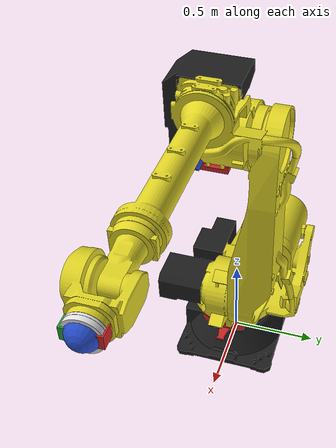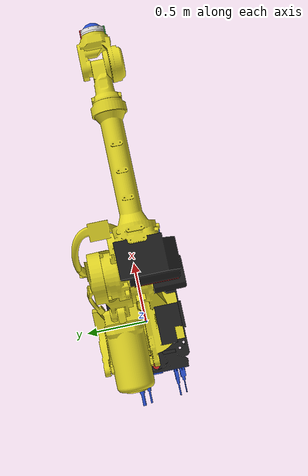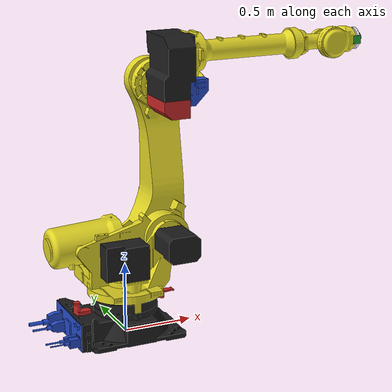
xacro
<?xml version="1.0"?>
<robot name="yefan" xmlns:xacro="http://www.ros.org/wiki/xacro">

    <xacro:include filename="$(find yefan_description)/urdf/yefan_limits.xacro"/>
    <xacro:include filename="$(find yefan_description)/urdf/torque_sensor.xacro"/>

    <yefan_macro/>
    <yefan_torque_sensors/>

    <link name="world"/>

    <joint name="grounding" type="fixed">
        <parent link="world"/>
        <child link="link1"/>
        <origin
                xyz="0 0 0"
                rpy="0 0 0"/>
    </joint>
    <gazebo>
        <plugin filename="libgazebo_ros_control.so" name="ros_control">
            <robotNamespace>/yefan</robotNamespace>
        </plugin>
        <plugin filename="libgazebo_ros_ft_sensor.so" name="ft_sensor">
            <topicName>/yefan/ft_sensor</topicName>
            <robotNamespace>/yefan</robotNamespace>
            <jointName>joint_torque_sensor</jointName>
        </plugin>
    </gazebo>
    <gazebo reference="joint_torque_sensor">
        <provideFeedback>true</provideFeedback>
    </gazebo>
</robot>

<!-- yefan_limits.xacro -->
<robot xmlns:xacro="http://www.ros.org/wiki/xacro">
    <xacro:macro name="yefan_limits_for_first_joints">
        <limit
            lower="-1000"
            upper="1000"
            effort="5000"
            velocity="1000000"/>
    </xacro:macro>

    <xacro:macro name="yefan_limits_for_last_joints">
        <limit
            lower="-1000"
            upper="1000"
            effort="500"
            velocity="1000000"/>
    </xacro:macro>

    <xacro:macro name="yefan_macro">
        <joint name="joint1" type="revolute">
            <origin xyz="0 0 0.346" rpy="0 0 0"/>
            <parent link="link1"/>
            <child link="link2"/>
            <axis xyz="0 0 1"/>
            <yefan_limits_for_first_joints/>
            <!--  bound +-185 limit effort ? and dynamics? -->
            <dynamics damping="125" friction="155"/>
        </joint>
        <joint name="joint2" type="revolute">
            <origin xyz="0.312 0 0.324" rpy="0 0 0"/>
            <parent link="link2"/>
            <child link="link3"/>
            <axis xyz="0 1 0"/>
            <yefan_limits_for_first_joints/>
            <!--  limit effort, boudns? range=136 ? ? and dynamics? -->
            <dynamics damping="72" friction="50"/>
        </joint>
        <joint name="joint3" type="revolute">
            <origin xyz="0 0 1.075" rpy="0 0 0"/>
            <parent link="link3"/>
            <child link="link4"/>
            <axis xyz="0 -1 0"/>
            <yefan_limits_for_first_joints/>
            <!--  limit effort, boudns? range=312 ? and dynamics? -->
            <dynamics damping="15" friction="48"/>
        </joint>
        <joint name="joint4" type="revolute">
            <origin xyz="0 0 0.225" rpy="0 0 0"/>
            <parent link="link4"/>
            <child link="link5"/>
            <axis xyz="-1 0 0"/>
            <yefan_limits_for_last_joints/>
            <!--  limit effort =moment ? and dynamics? -->
            <dynamics damping="1" friction="1"/>
        </joint>
        <joint name="joint5" type="revolute">
            <origin xyz="1.28 0 0" rpy="0 0 0"/>
            <parent link="link5"/>
            <child link="link6"/>
            <axis xyz="0 -1 0"/>
            <yefan_limits_for_last_joints/>
            <!--  limit, bound? range=250 effort ? and dynamics? -->
            <dynamics damping="1" friction="1"/>
        </joint>
        <joint name="joint6" type="revolute">
            <origin xyz="0.215 0 0" rpy="0 0 0"/>
            <parent link="link6"/>
            <child link="link7"/>
            <axis xyz="-1 0 0"/>
            <yefan_limits_for_last_joints/>
            <!--  limit effort ? and dynamics? -->
            <dynamics damping="1" friction="1"/>
        </joint>

        <link name="link1">
            <inertial>
                <mass value="550"/>
                <origin xyz="0 0 0"/>
                <inertia ixx="0.0" ixy="0.0" ixz="0.0"
                         iyy="0.0" iyz="0.0"
                         izz="0.0"/>
            </inertial>
            <collision>
                <origin xyz="0 0 0" rpy="0 0 0"/>
                <geometry>
                    <mesh filename="package://yefan_description/meshes/J1.STL"/>
                </geometry>
            </collision>
            <visual>
                <origin xyz="0 0 0" rpy="0 0 0"/>
                <geometry>
                    <mesh filename="package://yefan_description/meshes/J1.STL"/>
                </geometry>
            </visual>
        </link>

        <link name="link2">
            <inertial>
                <mass value="250"/>
                <origin xyz="0 0 0"/>
                <inertia ixx="0.0" ixy="0.0" ixz="0.0"
                         iyy="0.0" iyz="0.0"
                         izz="0.0"/>
            </inertial>
            <collision>
                <origin xyz="0 0 -0.346" rpy="0 0 0"/>
                <geometry>
                    <mesh filename="package://yefan_description/meshes/J2Base.STL"/>
                </geometry>
            </collision>
            <visual>
                <origin xyz="0 0 -0.346" rpy="0 0 0"/>
                <geometry>
                    <mesh filename="package://yefan_description/meshes/J2Base.STL"/>
                </geometry>
            </visual>
        </link>

        <link name="link3">
            <inertial>
                <mass value="60"/>
                <origin xyz="0 0 0"/>
                <inertia ixx="0.0" ixy="0.0" ixz="0.0"
                         iyy="0.0" iyz="0.0"
                         izz="0.0"/>
            </inertial>
            <collision>
                <origin xyz="-0.312 0 -0.67" rpy="0 0 0"/>
                <geometry>
                    <mesh filename="package://yefan_description/meshes/J2Arm.STL"/>
                </geometry>
            </collision>
            <visual>
                <origin xyz="-0.312 0 -0.67" rpy="0 0 0"/>
                <geometry>
                    <mesh filename="package://yefan_description/meshes/J2Arm.STL"/>
                </geometry>

            </visual>
        </link>

        <link name="link4">
            <inertial>
                <mass value="30"/>
                <origin xyz="0 0 0"/>
                <inertia ixx="0.0" ixy="0.0" ixz="0.0"
                         iyy="0.0" iyz="0.0"
                         izz="0.0"/>
            </inertial>
            <collision>
                <origin xyz="-0.312 0 -1.745" rpy="0 0 0"/>
                <geometry>
                    <mesh filename="package://yefan_description/meshes/J3.STL"/>
                </geometry>
            </collision>
            <visual>
                <origin xyz="-0.312 0 -1.745" rpy="0 0 0"/>
                <geometry>
                    <mesh filename="package://yefan_description/meshes/J3.STL"/>
                </geometry>

            </visual>
        </link>

        <link name="link5">
            <inertial>
                <mass value="15"/>
                <origin xyz="0 0 0"/>
                <inertia ixx="0.0" ixy="0.0" ixz="0.0"
                         iyy="0.0" iyz="0.0"
                         izz="0.0"/>
            </inertial>
            <collision>
                <origin xyz="-0.312 0 -1.97" rpy="0 0 0"/>
                <geometry>
                    <mesh filename="package://yefan_description/meshes/J4.STL"/>
                </geometry>
            </collision>
            <visual>
                <origin xyz="-0.312 0 -1.97" rpy="0 0 0"/>
                <geometry>
                    <mesh filename="package://yefan_description/meshes/J4.STL"/>
                </geometry>

            </visual>
        </link>

        <link name="link6">
            <inertial>
                <mass value="20"/>
                <origin xyz="0 0 0"/>
                <inertia ixx="0.0" ixy="0.0" ixz="0.0"
                         iyy="0.0" iyz="0.0"
                         izz="0.0"/>
            </inertial>
            <collision>
                <origin xyz="-1.592 0 -1.97" rpy="0 0 0"/>
                <geometry>
                    <mesh filename="package://yefan_description/meshes/J5.STL"/>
                </geometry>
            </collision>
            <visual>
                <origin xyz="-1.592 0 -1.97" rpy="0 0 0"/>
                <geometry>
                    <mesh filename="package://yefan_description/meshes/J5.STL"/>
                </geometry>

            </visual>
        </link>

        <link name="link7">
            <inertial>
                <mass value="2"/>
                <origin xyz="0 0 0"/>
                <inertia ixx="0.0" ixy="0.0" ixz="0.0"
                         iyy="0.0" iyz="0.0"
                         izz="0.0"/>
            </inertial>
            <collision>
                <origin xyz="-1.807 0 -1.97" rpy="0 0 0"/>
                <geometry>
                    <mesh filename="package://yefan_description/meshes/J6.STL"/>
                </geometry>
            </collision>
            <visual>
                <origin xyz="-1.807 0 -1.97" rpy="0 0 0"/>
                <geometry>
                    <mesh filename="package://yefan_description/meshes/J6.STL"/>
                </geometry>

            </visual>
        </link>
        <gazebo reference="link1">
            <material>Gazebo/Black</material>
        </gazebo>
        <gazebo reference="link2">
            <material>Gazebo/Yellow</material>
        </gazebo>
        <gazebo reference="link3">
            <material>Gazebo/Yellow</material>
        </gazebo>
        <gazebo reference="link4">
            <material>Gazebo/Yellow</material>
        </gazebo>
        <gazebo reference="link5">
            <material>Gazebo/Yellow</material>
        </gazebo>
        <gazebo reference="link6">
            <material>Gazebo/Yellow</material>
        </gazebo>
        <gazebo reference="link7">
            <material>Gazebo/White</material>
        </gazebo>

        <xacro:macro name="joint_transmission_macro" params="joint_name">
            <transmission name="${joint_name}_transmssion">
                <type>transmission_interface/SimpleTransmission</type>
                <joint name="${joint_name}">
                    <hardwareInterface>hardware_interface/EffortJointInterface</hardwareInterface>
                </joint>
                <actuator name="${joint_name}_motor">
                    <hardwareInterface>EffortJointInterface</hardwareInterface>
                    <mechanicalReduction>1</mechanicalReduction>
                </actuator>
            </transmission>
            <gazebo reference="${joint_name}">
                <implicitSpringDamper>1</implicitSpringDamper>
            </gazebo>
        </xacro:macro>

        <joint_transmission_macro joint_name="joint1"/>
        <joint_transmission_macro joint_name="joint2"/>
        <joint_transmission_macro joint_name="joint3"/>
        <joint_transmission_macro joint_name="joint4"/>
        <joint_transmission_macro joint_name="joint5"/>
        <joint_transmission_macro joint_name="joint6"/>

        <xacro:include filename="$(find yefan_description)/urdf/additions.xacro"/>

        <link name="end_effector_orientation_marker_left">
            <inertial>
                <mass value="0.1"/>
                <origin xyz="0 0 0"/>
                <inertia ixx="0.0" ixy="0.0" ixz="0.0"
                         iyy="0.0" iyz="0.0"
                         izz="0.0"/>
            </inertial>
            <visual>
                <geometry>
                    <box size="0.06 0.06 0.06"/>
                </geometry>
            </visual>
        </link>
        <gazebo reference="end_effector_orientation_marker_left">
            <material>Gazebo/Red</material>
        </gazebo>
        <joint name="link7_to_eeml" type="fixed">
            <origin xyz="0.0 0.05 0.0" rpy="0 0 0"/>
            <parent link="link7"/>
            <child link="end_effector_orientation_marker_left"/>
        </joint>

        <link name="end_effector_orientation_marker_right">
            <inertial>
                <mass value="0.1"/>
                <origin xyz="0 0 0"/>
                <inertia ixx="0.0" ixy="0.0" ixz="0.0"
                         iyy="0.0" iyz="0.0"
                         izz="0.0"/>
            </inertial>
            <visual>
                <geometry>
                    <box size="0.06 0.06 0.06"/>
                </geometry>
            </visual>
        </link>
        <gazebo reference="end_effector_orientation_marker_right">
            <material>Gazebo/Green</material>
        </gazebo>
        <joint name="link7_to_end_eemr" type="fixed">
            <origin xyz="0.0 -0.05 0.0" rpy="0 0 0"/>
            <parent link="link7"/>
            <child link="end_effector_orientation_marker_right"/>
        </joint>
    </xacro:macro>

</robot>

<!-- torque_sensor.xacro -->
<robot xmlns:xacro="http://www.ros.org/wiki/xacro">
  <xacro:macro name="yefan_torque_sensors">
    <link name="link_torque_sensor">
      <inertial>
        <mass value="1.0"/>
        <origin xyz="0 0 0"/>
        <inertia ixx="0.0" ixy="0.0" ixz="0.0"
                 iyy="0.0" iyz="0.0"
                 izz="0.0"/>
      </inertial>
      <collision>
        <geometry>
          <sphere radius="0.07"/>
        </geometry>
      </collision>
      <visual>
        <geometry>
          <sphere radius="0.07"/>
        </geometry>
      </visual>
    </link>
    <gazebo reference="link_torque_sensor">
      <material>Gazebo/Blue</material>
      <minDepth value="0.005"/>
      <maxVel value="0.0"/>
      <mu1 value="0.8"/>
      <mu2 value="0.8"/>
      <kp>1.0e+9</kp>
      <kd>5.0e+6</kd>
      <collision>
        <surface>
          <contact>
            <ode>
              <soft_cfm>1.7e-07</soft_cfm>
              <soft_erp>0.17</soft_erp>
            </ode>
          </contact>
        </surface>
      </collision>
    </gazebo>
    <joint name="joint_torque_sensor" type="fixed">
      <origin xyz="0.0 0.0 0.0" rpy="0 1.57079632679 0"/>
      <parent link="link7"/>
      <child link="link_torque_sensor"/>
    </joint>

    <gazebo reference="joint_torque_sensor">
      <disableFixedJointLumping>true</disableFixedJointLumping>
      <sensor name="force_torque_sensor" type="force_torque">
        <always_on>true</always_on>
        <update_rate>0.0</update_rate>
        <visualize>true</visualize>
        <force_torque>
          <frame>sensor</frame>
          <measure_direction>child_to_parent</measure_direction>
        </force_torque>
      </sensor>
    </gazebo>
  </xacro:macro>
</robot>

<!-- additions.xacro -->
<robot>
    <joint name="joint_balancercase" type="fixed">
        <origin xyz="0 0 0" rpy="0 0 0"/>
        <parent link="link2"/>
        <child link="link_balancercase"/>
    </joint>
    <link name="link_balancercase">
        <inertial>
            <mass value="150"/>
            <origin xyz="0 0 0"/>
            <inertia ixx="0.0" ixy="0.0" ixz="0.0"
                     iyy="0.0" iyz="0.0"
                     izz="0.0"/>
        </inertial>
        <collision>
            <origin xyz="0 0 -0.346" rpy="0 0 0"/>
            <geometry>
                <mesh filename="package://yefan_description/meshes/BalancerCase.STL"/>
            </geometry>
        </collision>
        <visual>
            <origin xyz="0 0 -0.346" rpy="0 0 0"/>
            <geometry>
                <mesh filename="package://yefan_description/meshes/BalancerCase.STL"/>
            </geometry>

        </visual>
    </link>
    <gazebo reference="link_balancercase">
        <material>Gazebo/Yellow</material>
    </gazebo>

    <joint name="joint_balancerrod" type="fixed">
        <origin xyz="0 0 0" rpy="0 0 0"/>
        <parent link="link2"/>
        <child link="link_balancerrod"/>
    </joint>
    <link name="link_balancerrod">
        <inertial>
            <mass value="15"/>
            <origin xyz="0 0 0"/>
            <inertia ixx="0.0" ixy="0.0" ixz="0.0"
                     iyy="0.0" iyz="0.0"
                     izz="0.0"/>
        </inertial>
        <collision>
            <origin xyz="0 0 -0.346" rpy="0 0 0"/>
            <geometry>
                <mesh filename="package://yefan_description/meshes/BalancerRod.STL"/>
            </geometry>
        </collision>
        <visual>
            <origin xyz="0 0 -0.346" rpy="0 0 0"/>
            <geometry>
                <mesh filename="package://yefan_description/meshes/BalancerRod.STL"/>
            </geometry>

        </visual>
    </link>
    <gazebo reference="link_balancerrod">
        <material>Gazebo/Yellow</material>
    </gazebo>

    <joint name="joint_stopper1a" type="fixed">
        <origin xyz="0 0 0" rpy="0 0 0"/>
        <parent link="link1"/>
        <child link="link_stopper1a"/>
    </joint>
    <link name="link_stopper1a">
        <inertial>
            <mass value="2"/>
            <origin xyz="0 0 0"/>
            <inertia ixx="0.0" ixy="0.0" ixz="0.0"
                     iyy="0.0" iyz="0.0"
                     izz="0.0"/>
        </inertial>
        <collision>
            <origin
                    xyz="0 0 0"
                    rpy="0 0 0"/>
            <geometry>
                <mesh filename="package://yefan_description/meshes/stopper_J1_A.STL"/>
            </geometry>
        </collision>
        <visual>
            <origin xyz="0 0 0" rpy="0 0 0"/>
            <geometry>
                <mesh filename="package://yefan_description/meshes/stopper_J1_A.STL"/>
            </geometry>

        </visual>
    </link>
    <gazebo reference="link_stopper1a">
        <material>Gazebo/Red</material>
    </gazebo>

    <joint name="joint_stopper1b" type="fixed">
        <origin xyz="0 0 0" rpy="0 0 0"/>
        <parent link="link1"/>
        <child link="link_stopper1b"/>
    </joint>
    <link name="link_stopper1b">
        <inertial>
            <mass value="2"/>
            <origin xyz="0 0 0"/>
            <inertia ixx="0.0" ixy="0.0" ixz="0.0"
                     iyy="0.0" iyz="0.0"
                     izz="0.0"/>
        </inertial>
        <collision>
            <origin
                    xyz="0 0 0"
                    rpy="0 0 0"/>
            <geometry>
                <mesh filename="package://yefan_description/meshes/stopper_J1_B.STL"/>
            </geometry>
        </collision>
        <visual>
            <origin xyz="0 0 0" rpy="0 0 0"/>
            <geometry>
                <mesh filename="package://yefan_description/meshes/stopper_J1_B.STL"/>
            </geometry>

        </visual>
    </link>
    <gazebo reference="link_stopper1b">
        <material>Gazebo/Red</material>
    </gazebo>

    <joint name="joint_h501_j1" type="fixed">
        <origin xyz="0 0 0" rpy="0 0 0"/>
        <parent link="link1"/>
        <child link="link_h501_j1"/>
    </joint>
    <link name="link_h501_j1">
        <inertial>
            <mass value="5"/>
            <origin xyz="0 0 0"/>
            <inertia ixx="0.0" ixy="0.0" ixz="0.0"
                     iyy="0.0" iyz="0.0"
                     izz="0.0"/>
        </inertial>
        <collision>
            <origin
                    xyz="0 0 0"
                    rpy="0 0 0"/>
            <geometry>
                <mesh filename="package://yefan_description/meshes/H501_J1.STL"/>
            </geometry>
        </collision>
        <visual>
            <origin xyz="0 0 0" rpy="0 0 0"/>
            <geometry>
                <mesh filename="package://yefan_description/meshes/H501_J1.STL"/>
            </geometry>

        </visual>
    </link>
    <gazebo reference="link_h501_j1">
        <material>Gazebo/Blue</material>
    </gazebo>

    <joint name="joint_h501_j3" type="fixed">
        <origin xyz="0 0 0" rpy="0 0 0"/>
        <parent link="link4"/>
        <child link="link_h501_j3"/>
    </joint>
    <link name="link_h501_j3">
        <inertial>
            <mass value="5"/>
            <origin xyz="0 0 0"/>
            <inertia ixx="0.0" ixy="0.0" ixz="0.0"
                     iyy="0.0" iyz="0.0"
                     izz="0.0"/>
        </inertial>
        <collision>
            <origin xyz="-0.312 0 -1.745" rpy="0 0 0"/>
            <geometry>
                <mesh filename="package://yefan_description/meshes/H501_J3.STL"/>
            </geometry>
        </collision>
        <visual>
            <origin xyz="-0.312 0 -1.745" rpy="0 0 0"/>
            <geometry>
                <mesh filename="package://yefan_description/meshes/H501_J3.STL"/>
            </geometry>
        </visual>
    </link>
    <gazebo reference="link_h501_j3">
        <material>Gazebo/Blue</material>
    </gazebo>

    <joint name="joint_mcover1" type="fixed">
        <origin xyz="0 0 0" rpy="0 0 0"/>
        <parent link="link2"/>
        <child link="link_mcover1"/>
    </joint>
    <link name="link_mcover1">
        <inertial>
            <mass value="10"/>
            <origin xyz="0 0 0"/>
            <inertia ixx="0.0" ixy="0.0" ixz="0.0"
                     iyy="0.0" iyz="0.0"
                     izz="0.0"/>
        </inertial>
        <collision>
            <origin xyz="0 0 -0.346" rpy="0 0 0"/>
            <geometry>
                <mesh filename="package://yefan_description/meshes/MotorCover_J1.STL"/>
            </geometry>
        </collision>
        <visual>
            <origin xyz="0 0 -0.346" rpy="0 0 0"/>
            <geometry>
                <mesh filename="package://yefan_description/meshes/MotorCover_J1.STL"/>
            </geometry>

        </visual>
    </link>
    <gazebo reference="link_mcover1">
        <material>Gazebo/Black</material>
    </gazebo>

    <joint name="joint_mcover2" type="fixed">
        <origin xyz="0 0 0" rpy="0 0 0"/>
        <parent link="link2"/>
        <child link="link_mcover2"/>
    </joint>
    <link name="link_mcover2">
        <inertial>
            <mass value="10"/>
            <origin xyz="0 0 0"/>
            <inertia ixx="0.0" ixy="0.0" ixz="0.0"
                     iyy="0.0" iyz="0.0"
                     izz="0.0"/>
        </inertial>
        <collision>
            <origin xyz="0 0 -0.346" rpy="0 0 0"/>
            <geometry>
                <mesh filename="package://yefan_description/meshes/MotorCover_J2.STL"/>
            </geometry>
        </collision>
        <visual>
            <origin xyz="0 0 -0.346" rpy="0 0 0"/>
            <geometry>
                <mesh filename="package://yefan_description/meshes/MotorCover_J2.STL"/>
            </geometry>
        </visual>
    </link>
    <gazebo reference="link_mcover2">
        <material>Gazebo/Black</material>
    </gazebo>

    <joint name="joint_mcover3" type="fixed">
        <origin xyz="0 0 0" rpy="0 0 0"/>
        <parent link="link4"/>
        <child link="link_mcover3"/>
    </joint>
    <link name="link_mcover3">
        <inertial>
            <mass value="5"/>
            <origin xyz="0 0 0"/>
            <inertia ixx="0.0" ixy="0.0" ixz="0.0"
                     iyy="0.0" iyz="0.0"
                     izz="0.0"/>
        </inertial>
        <collision>
            <origin xyz="-0.312 0 -1.745" rpy="0 0 0"/>
            <geometry>
                <mesh filename="package://yefan_description/meshes/MotorCover_J3456_bottom.STL"/>
            </geometry>
        </collision>
        <visual>
            <origin xyz="-0.312 0 -1.745" rpy="0 0 0"/>
            <geometry>
                <mesh filename="package://yefan_description/meshes/MotorCover_J3456_bottom.STL"/>
            </geometry>

        </visual>
    </link>
    <gazebo reference="link_mcover3">
        <material>Gazebo/Red</material>
    </gazebo>

    <joint name="joint_mcover3_top" type="fixed">
        <origin xyz="0 0 0" rpy="0 0 0"/>
        <parent link="link4"/>
        <child link="link_mcover3_top"/>
    </joint>
    <link name="link_mcover3_top">
        <inertial>
            <mass value="5"/>
            <origin xyz="0 0 0"/>
            <inertia ixx="0.0" ixy="0.0" ixz="0.0"
                     iyy="0.0" iyz="0.0"
                     izz="0.0"/>
        </inertial>
        <collision>
            <origin xyz="-0.312 0 -1.745" rpy="0 0 0"/>
            <geometry>
                <mesh filename="package://yefan_description/meshes/MotorCover_J3456_top.STL"/>
            </geometry>
        </collision>
        <visual>
            <origin xyz="-0.312 0 -1.745" rpy="0 0 0"/>
            <geometry>
                <mesh filename="package://yefan_description/meshes/MotorCover_J3456_top.STL"/>
            </geometry>
        </visual>
    </link>
    <gazebo reference="link_mcover3_top">
        <material>Gazebo/Black</material>
    </gazebo>

    <joint name="joint_insflange" type="fixed">
        <origin xyz="0 0 0" rpy="0 0 0"/>
        <parent link="link7"/>
        <child link="link_insflange"/>
    </joint>
    <link name="link_insflange">
        <inertial>
            <mass value="3"/>
            <origin xyz="0 0 0"/>
            <inertia ixx="0.0" ixy="0.0" ixz="0.0"
                     iyy="0.0" iyz="0.0"
                     izz="0.0"/>
        </inertial>
        <collision>
            <origin xyz="-1.807 0 -1.97" rpy="0 0 0"/>
            <geometry>
                <mesh filename="package://yefan_description/meshes/insulated_flange.STL"/>
            </geometry>
        </collision>
        <visual>
            <origin xyz="-1.807 0 -1.97" rpy="0 0 0"/>
            <geometry>
                <mesh filename="package://yefan_description/meshes/insulated_flange.STL"/>
            </geometry>

        </visual>
    </link>
    <gazebo reference="link_insflange">
        <material>Gazebo/White</material>
    </gazebo>
</robot>
